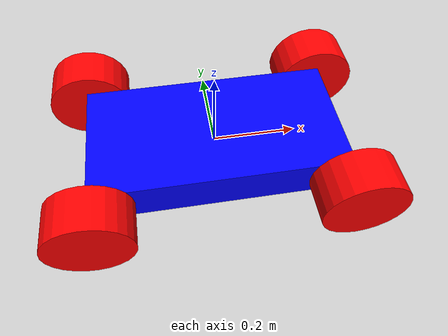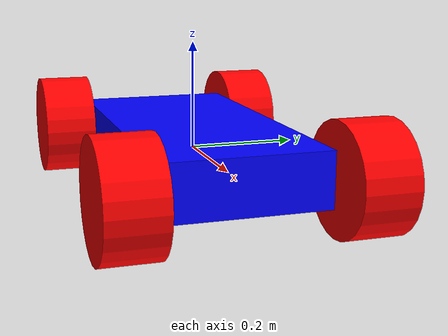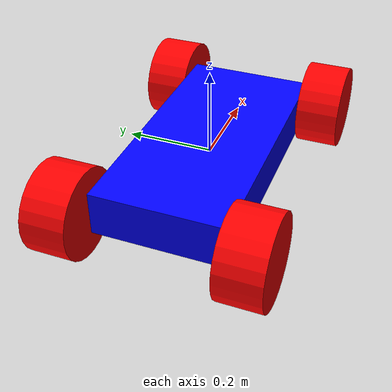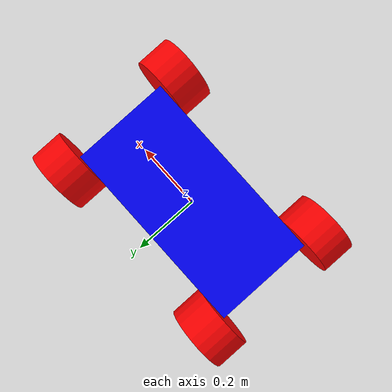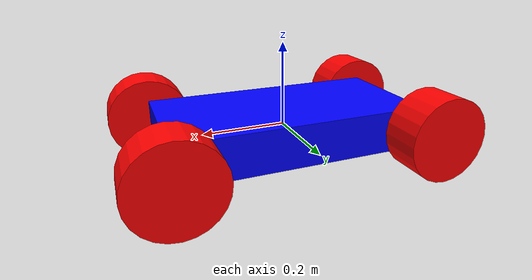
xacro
<?xml version="1.0"?>
<robot name="prime" xmlns:xacro="http://www.ros.org/wiki/xacro">

  <!-- Define materials -->
  <material name="red">
    <color rgba="1 0 0 1"/>
  </material>
  <material name="blue">
    <color rgba="0 0 1 1"/>
  </material>

  <!-- Geometry and mass properties -->
  <xacro:property name="wheel_radius" value="0.1"/>
  <xacro:property name="wheel_thickness" value="0.1"/>
  <xacro:property name="chassis_length" value="0.6"/>
  <xacro:property name="chassis_width" value="0.3"/>
  <xacro:property name="wheel_offset_y" value="${(chassis_width/2) + (wheel_thickness/2)}"/>
  <xacro:property name="chassis_mass" value="5"/>
  <xacro:property name="wheel_mass" value="0.5"/>

  <!-- Inertia calculations for the chassis (box shape) -->
  <xacro:property name="chassis_Ixx" value="${chassis_mass/12 * ((chassis_width**2) + (0.1**2))}"/>
  <xacro:property name="chassis_Iyy" value="${chassis_mass/12 * ((chassis_length**2) + (0.1**2))}"/>
  <xacro:property name="chassis_Izz" value="${chassis_mass/12 * ((chassis_length**2) + (chassis_width**2))}"/>

  <!-- Inertia calculations for the wheels (cylinder shape) -->
  <xacro:property name="wheel_Ixx" value="${wheel_mass/12 * (3*(wheel_radius**2) + (wheel_thickness**2))}"/>
  <xacro:property name="wheel_Iyy" value="${wheel_mass/12 * (3*(wheel_radius**2) + (wheel_thickness**2))}"/>
  <xacro:property name="wheel_Izz" value="${wheel_mass/2 * (wheel_radius**2)}"/>

  <!-- Chassis Link -->
  <link name="chassis">
    <visual>
      <origin xyz="0 0 0" rpy="0 0 0"/>
      <geometry>
        <box size="${chassis_length} ${chassis_width} 0.1"/>
      </geometry>
      <material name="blue"/>
    </visual>
    <collision>
      <origin xyz="0 0 0" rpy="0 0 0"/>
      <geometry>
        <box size="${chassis_length} ${chassis_width} 0.1"/>
      </geometry>
    </collision>
    <inertial>
      <origin xyz="0 0 -0.03"/>
      <mass value="${chassis_mass}"/>
      <inertia
          ixx="${chassis_Ixx}"
          ixy="0.0"
          iyy="${chassis_Iyy}"
          izz="${chassis_Izz}"
          iyz="0.0"
          ixz="0.0"/>
    </inertial>
  </link>

  <!-- Wheel Links -->
  <link name="wheel_1">
    <visual>
      <origin xyz="0 0 0" rpy="0 0 0"/>
      <geometry>
        <cylinder radius="${wheel_radius}" length="${wheel_thickness}"/>
      </geometry>
      <material name="red"/>
    </visual>
    <collision>
      <origin xyz="0 0 0" rpy="0 0 0"/>
      <geometry>
        <cylinder radius="${wheel_radius}" length="${wheel_thickness}"/>
      </geometry>
      <gazebo>
        <mu1>0.6</mu1>
        <mu2>0.55</mu2>
        <kp>100000</kp>
        <kd>500</kd>
      </gazebo>
    </collision>
    <inertial>
      <mass value="${wheel_mass}"/>
      <inertia
          ixx="${wheel_Ixx}"
          ixy="0.0"
          iyy="${wheel_Iyy}"
          izz="${wheel_Izz}"
          iyz="0.0"
          ixz="0.0"/>
    </inertial>
  </link>

  <link name="wheel_2">
    <visual>
      <origin xyz="0 0 0" rpy="0 0 0"/>
      <geometry>
        <cylinder radius="${wheel_radius}" length="${wheel_thickness}"/>
      </geometry>
      <material name="red"/>
    </visual>
    <collision>
      <origin xyz="0 0 0" rpy="0 0 0"/>
      <geometry>
        <cylinder radius="${wheel_radius}" length="${wheel_thickness}"/>
      </geometry>
      <gazebo>
        <mu1>0.6</mu1>
        <mu2>0.55</mu2>
        <kp>100000</kp>
        <kd>500</kd>
      </gazebo>
    </collision>
    <inertial>
      <mass value="${wheel_mass}"/>
      <inertia
          ixx="${wheel_Ixx}"
          ixy="0.0"
          iyy="${wheel_Iyy}"
          izz="${wheel_Izz}"
          iyz="0.0"
          ixz="0.0"/>
    </inertial>
  </link>

  <link name="wheel_3">
    <visual>
      <origin xyz="0 0 0" rpy="0 0 0"/>
      <geometry>
        <cylinder radius="${wheel_radius}" length="${wheel_thickness}"/>
      </geometry>
      <material name="red"/>
    </visual>
    <collision>
      <origin xyz="0 0 0" rpy="0 0 0"/>
      <geometry>
        <cylinder radius="${wheel_radius}" length="${wheel_thickness}"/>
      </geometry>
      <gazebo>
        <mu1>0.6</mu1>
        <mu2>0.55</mu2>
        <kp>100000</kp>
        <kd>500</kd>
      </gazebo>
    </collision>
    <inertial>
      <mass value="${wheel_mass}"/>
      <inertia
          ixx="${wheel_Ixx}"
          ixy="0.0"
          iyy="${wheel_Iyy}"
          izz="${wheel_Izz}"
          iyz="0.0"
          ixz="0.0"/>
    </inertial>
  </link>

  <link name="wheel_4">
    <visual>
      <origin xyz="0 0 0" rpy="0 0 0"/>
      <geometry>
        <cylinder radius="${wheel_radius}" length="${wheel_thickness}"/>
      </geometry>
      <material name="red"/>
    </visual>
    <collision>
      <origin xyz="0 0 0" rpy="0 0 0"/>
      <geometry>
        <cylinder radius="${wheel_radius}" length="${wheel_thickness}"/>
      </geometry>
      <gazebo>
        <mu1>0.6</mu1>
        <mu2>0.55</mu2>
        <kp>100000</kp>
        <kd>500</kd>
      </gazebo>
    </collision>
    <inertial>
      <mass value="${wheel_mass}"/>
      <inertia
          ixx="${wheel_Ixx}"
          ixy="0.0"
          iyy="${wheel_Iyy}"
          izz="${wheel_Izz}"
          iyz="0.0"
          ixz="0.0"/>
    </inertial>
  </link>

  <!-- Joints -->
  <joint name="first_wheel_joint" type="revolute">
    <origin xyz="${chassis_length/2} ${-wheel_offset_y} 0" rpy="1.57 0 0"/>
    <parent link="chassis"/>
    <child link="wheel_1"/>
    <limit lower="-3.14" upper="3.14" effort="2" velocity="4"/>
    <dynamics damping="0.2"/>
    <axis xyz="0 0 -1"/>
  </joint>

  <joint name="second_wheel_joint" type="revolute">
    <origin xyz="${chassis_length/2} ${wheel_offset_y} 0" rpy="1.57 0 0"/>
    <parent link="chassis"/>
    <child link="wheel_2"/>
    <limit lower="-3.14" upper="3.14" effort="2" velocity="4"/>
    <dynamics damping="0.2"/>
    <axis xyz="0 0 -1"/>
  </joint>

  <joint name="third_wheel_joint" type="revolute">
    <origin xyz="${-chassis_length/2} ${wheel_offset_y} 0" rpy="1.57 0 0"/>
    <parent link="chassis"/>
    <child link="wheel_3"/>
    <limit lower="-3.14" upper="3.14" effort="2" velocity="4"/>
    <dynamics damping="0.2"/>
    <axis xyz="0 0 1"/>
  </joint>

  <joint name="fourth_wheel_joint" type="revolute">
    <origin xyz="${-chassis_length/2} ${-wheel_offset_y} 0" rpy="1.57 0 0"/>
    <parent link="chassis"/>
    <child link="wheel_4"/>
    <limit lower="-3.14" upper="3.14" effort="2" velocity="4"/>
    <dynamics damping="0.2"/>
    <axis xyz="0 0 1"/>
  </joint>

  <!-- ros2_control configuration -->
  <ros2_control name="Gazebosim" type="system">
    <hardware>
      <plugin>gazebo_ros2_control/GazeboSystem</plugin>
    </hardware>
    <joint name="first_wheel_joint">
      <command_interface name="velocity"/>
      <state_interface name="position"/>
      <state_interface name="velocity"/>
    </joint>
    <joint name="second_wheel_joint">
      <command_interface name="velocity"/>
      <state_interface name="position"/>
      <state_interface name="velocity"/>
    </joint>
    <joint name="third_wheel_joint">
      <command_interface name="velocity"/>
      <state_interface name="position"/>
      <state_interface name="velocity"/>
    </joint>
    <joint name="fourth_wheel_joint">
      <command_interface name="velocity"/>
      <state_interface name="position"/>
      <state_interface name="velocity"/>
    </joint>
  </ros2_control>

  <gazebo>
    <plugin name="gazebo_ros2_control" filename="libgazebo_ros2_control.so">
      <robot_namespace>/</robot_namespace>
      <parameters>$(find four_wheel_mobile_robot_navigation)/config/my_controllers.yaml</parameters>
      <controller_manager_node_name>controller_manager</controller_manager_node_name>
    </plugin>
  </gazebo>

</robot>
